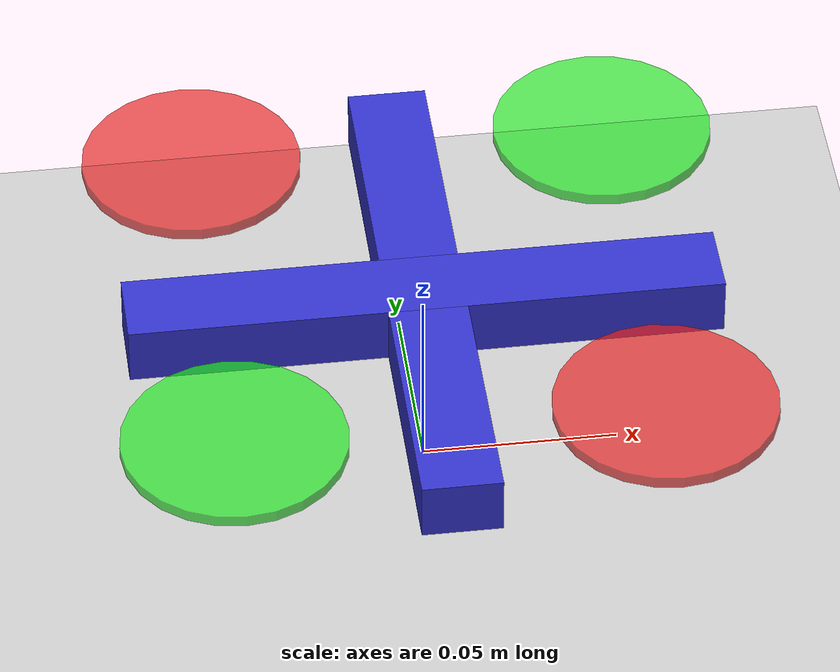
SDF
<?xml version="1.0"?>
<sdf version="1.9">
  <world name="quadrotor_world">

    <!-- Required Gazebo Harmonic system plugins -->
    <plugin filename="gz-sim-physics-system"
            name="gz::sim::systems::Physics"/>
    <plugin filename="gz-sim-sensors-system"
            name="gz::sim::systems::Sensors">
      <render_engine>ogre2</render_engine>
    </plugin>
    <plugin filename="gz-sim-scene-broadcaster-system"
            name="gz::sim::systems::SceneBroadcaster"/>
    <plugin filename="gz-sim-user-commands-system"
            name="gz::sim::systems::UserCommands"/>
    <plugin filename="gz-sim-imu-system"
            name="gz::sim::systems::Imu"/>

    <!-- Lighting -->
    <light name="sun" type="directional">
      <cast_shadows>true</cast_shadows>
      <pose>0 0 10 0 0 0</pose>
      <diffuse>0.8 0.8 0.8 1</diffuse>
      <specular>0.2 0.2 0.2 1</specular>
      <direction>-0.5 0.1 -0.9</direction>
    </light>

    <!-- Ground plane -->
    <model name="ground_plane">
      <static>true</static>
      <link name="link">
        <collision name="collision">
          <geometry>
            <plane><normal>0 0 1</normal><size>100 100</size></plane>
          </geometry>
          <surface>
            <friction><ode><mu>100</mu><mu2>50</mu2></ode></friction>
          </surface>
        </collision>
        <visual name="visual">
          <geometry>
            <plane><normal>0 0 1</normal><size>100 100</size></plane>
          </geometry>
          <material>
            <ambient>0.8 0.8 0.8 1</ambient>
            <diffuse>0.8 0.8 0.8 1</diffuse>
          </material>
        </visual>
      </link>
    </model>

    <!-- Quadrotor model -->
    <include>
      <uri>model://quadrotor</uri>
      <name>quadrotor</name>
      <pose>0 0 0.05 0 0 0</pose>
    </include>

    <!-- Physics settings -->
    <physics name="1ms" type="ignored">
      <max_step_size>0.001</max_step_size>
      <real_time_factor>1</real_time_factor>
    </physics>

  </world>
</sdf>

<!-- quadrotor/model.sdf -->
<sdf version="1.9">
  <model name="quadrotor">
    <pose>0 0 0.05 0 0 0</pose>

    <!-- ─── Main body ─── -->
    <link name="base_link">
      <inertial>
        <mass>0.045</mass>
        <pose>0 0 0 0 0 0</pose>
        <inertia>
          <ixx>7.921e-5</ixx> <ixy>0</ixy> <ixz>0</ixz>
          <iyy>13.604e-5</iyy> <iyz>0</iyz>
          <izz>7.317e-5</izz>
        </inertia>
      </inertial>
      <visual name="body_visual">
        <geometry>
          <box><size>0.15 0.02 0.015</size></box>
        </geometry>
        <material><diffuse>0.2 0.2 0.8 1</diffuse></material>
      </visual>
      <visual name="body_visual2">
        <pose>0 0 0 0 0 1.5708</pose>
        <geometry>
          <box><size>0.15 0.02 0.015</size></box>
        </geometry>
        <material><diffuse>0.2 0.2 0.8 1</diffuse></material>
      </visual>
      <collision name="body_collision">
        <geometry>
          <box><size>0.15 0.15 0.03</size></box>
        </geometry>
      </collision>
      <sensor name="imu" type="imu">
        <always_on>true</always_on>
        <update_rate>200</update_rate>
        <topic>/imu/data</topic>
        <imu>
          <angular_velocity><x><noise type="gaussian"><mean>0</mean><stddev>0.001</stddev></noise></x></angular_velocity>
          <linear_acceleration><x><noise type="gaussian"><mean>0</mean><stddev>0.01</stddev></noise></x></linear_acceleration>
        </imu>
      </sensor>
    </link>

    <!-- ─── Rotor links (X-configuration) ─── -->
    <!-- Motor 1: front-left  CW   (-x, +y) -->
    <link name="rotor_1">
      <pose>-0.0530 0.0530 0.008 0 0 0</pose>
      <inertial>
        <mass>0.001</mass>
        <inertia><ixx>9.75e-7</ixx><ixy>0</ixy><ixz>0</ixz><iyy>1.66e-8</iyy><iyz>0</iyz><izz>9.75e-7</izz></inertia>
      </inertial>
      <visual name="vis">
        <geometry><cylinder><radius>0.028</radius><length>0.003</length></cylinder></geometry>
        <material><diffuse>0.9 0.1 0.1 0.7</diffuse></material>
      </visual>
      <collision name="col">
        <geometry><cylinder><radius>0.028</radius><length>0.003</length></cylinder></geometry>
      </collision>
    </link>
    <joint name="rotor_1_joint" type="revolute">
      <parent>base_link</parent>
      <child>rotor_1</child>
      <axis><xyz>0 0 1</xyz><limit><lower>-1e16</lower><upper>1e16</upper></limit></axis>
    </joint>

    <!-- Motor 2: front-right CCW  (+x, +y) -->
    <link name="rotor_2">
      <pose>0.0530 0.0530 0.008 0 0 0</pose>
      <inertial>
        <mass>0.001</mass>
        <inertia><ixx>9.75e-7</ixx><ixy>0</ixy><ixz>0</ixz><iyy>1.66e-8</iyy><iyz>0</iyz><izz>9.75e-7</izz></inertia>
      </inertial>
      <visual name="vis">
        <geometry><cylinder><radius>0.028</radius><length>0.003</length></cylinder></geometry>
        <material><diffuse>0.1 0.9 0.1 0.7</diffuse></material>
      </visual>
      <collision name="col">
        <geometry><cylinder><radius>0.028</radius><length>0.003</length></cylinder></geometry>
      </collision>
    </link>
    <joint name="rotor_2_joint" type="revolute">
      <parent>base_link</parent>
      <child>rotor_2</child>
      <axis><xyz>0 0 1</xyz><limit><lower>-1e16</lower><upper>1e16</upper></limit></axis>
    </joint>

    <!-- Motor 3: rear-right  CW   (+x, -y) -->
    <link name="rotor_3">
      <pose>0.0530 -0.0530 0.008 0 0 0</pose>
      <inertial>
        <mass>0.001</mass>
        <inertia><ixx>9.75e-7</ixx><ixy>0</ixy><ixz>0</ixz><iyy>1.66e-8</iyy><iyz>0</iyz><izz>9.75e-7</izz></inertia>
      </inertial>
      <visual name="vis">
        <geometry><cylinder><radius>0.028</radius><length>0.003</length></cylinder></geometry>
        <material><diffuse>0.9 0.1 0.1 0.7</diffuse></material>
      </visual>
      <collision name="col">
        <geometry><cylinder><radius>0.028</radius><length>0.003</length></cylinder></geometry>
      </collision>
    </link>
    <joint name="rotor_3_joint" type="revolute">
      <parent>base_link</parent>
      <child>rotor_3</child>
      <axis><xyz>0 0 1</xyz><limit><lower>-1e16</lower><upper>1e16</upper></limit></axis>
    </joint>

    <!-- Motor 4: rear-left   CCW  (-x, -y) -->
    <link name="rotor_4">
      <pose>-0.0530 -0.0530 0.008 0 0 0</pose>
      <inertial>
        <mass>0.001</mass>
        <inertia><ixx>9.75e-7</ixx><ixy>0</ixy><ixz>0</ixz><iyy>1.66e-8</iyy><iyz>0</iyz><izz>9.75e-7</izz></inertia>
      </inertial>
      <visual name="vis">
        <geometry><cylinder><radius>0.028</radius><length>0.003</length></cylinder></geometry>
        <material><diffuse>0.1 0.9 0.1 0.7</diffuse></material>
      </visual>
      <collision name="col">
        <geometry><cylinder><radius>0.028</radius><length>0.003</length></cylinder></geometry>
      </collision>
    </link>
    <joint name="rotor_4_joint" type="revolute">
      <parent>base_link</parent>
      <child>rotor_4</child>
      <axis><xyz>0 0 1</xyz><limit><lower>-1e16</lower><upper>1e16</upper></limit></axis>
    </joint>

    <!-- ─── Multicopter motor model plugins ─── -->
    <!-- Motor 1 CW -->
    <plugin filename="gz-sim-multicopter-motor-model-system"
            name="gz::sim::systems::MulticopterMotorModel">
      <jointName>rotor_1_joint</jointName>
      <linkName>rotor_1</linkName>
      <turningDirection>cw</turningDirection>
      <timeConstantUp>0.07</timeConstantUp>
      <timeConstantDown>0.07</timeConstantDown>
      <maxRotVelocity>2640</maxRotVelocity>
      <motorConstant>2.64e-8</motorConstant>
      <momentConstant>5.4e-9</momentConstant>
      <commandSubTopic>/motor_speed</commandSubTopic>
      <motorNumber>0</motorNumber>
      <motorSpeedPubTopic>/motor_speed/motor_0</motorSpeedPubTopic>
    </plugin>

    <!-- Motor 2 CCW -->
    <plugin filename="gz-sim-multicopter-motor-model-system"
            name="gz::sim::systems::MulticopterMotorModel">
      <jointName>rotor_2_joint</jointName>
      <linkName>rotor_2</linkName>
      <turningDirection>ccw</turningDirection>
      <timeConstantUp>0.07</timeConstantUp>
      <timeConstantDown>0.07</timeConstantDown>
      <maxRotVelocity>2640</maxRotVelocity>
      <motorConstant>2.64e-8</motorConstant>
      <momentConstant>5.4e-9</momentConstant>
      <commandSubTopic>/motor_speed</commandSubTopic>
      <motorNumber>1</motorNumber>
      <motorSpeedPubTopic>/motor_speed/motor_1</motorSpeedPubTopic>
    </plugin>

    <!-- Motor 3 CW -->
    <plugin filename="gz-sim-multicopter-motor-model-system"
            name="gz::sim::systems::MulticopterMotorModel">
      <jointName>rotor_3_joint</jointName>
      <linkName>rotor_3</linkName>
      <turningDirection>cw</turningDirection>
      <timeConstantUp>0.07</timeConstantUp>
      <timeConstantDown>0.07</timeConstantDown>
      <maxRotVelocity>2640</maxRotVelocity>
      <motorConstant>2.64e-8</motorConstant>
      <momentConstant>5.4e-9</momentConstant>
      <commandSubTopic>/motor_speed</commandSubTopic>
      <motorNumber>2</motorNumber>
      <motorSpeedPubTopic>/motor_speed/motor_2</motorSpeedPubTopic>
    </plugin>

    <!-- Motor 4 CCW -->
    <plugin filename="gz-sim-multicopter-motor-model-system"
            name="gz::sim::systems::MulticopterMotorModel">
      <jointName>rotor_4_joint</jointName>
      <linkName>rotor_4</linkName>
      <turningDirection>ccw</turningDirection>
      <timeConstantUp>0.07</timeConstantUp>
      <timeConstantDown>0.07</timeConstantDown>
      <maxRotVelocity>2640</maxRotVelocity>
      <motorConstant>2.64e-8</motorConstant>
      <momentConstant>5.4e-9</momentConstant>
      <commandSubTopic>/motor_speed</commandSubTopic>
      <motorNumber>3</motorNumber>
      <motorSpeedPubTopic>/motor_speed/motor_3</motorSpeedPubTopic>
    </plugin>

    <!-- Odometry publisher -->
    <plugin filename="gz-sim-odometry-publisher-system"
            name="gz::sim::systems::OdometryPublisher">
      <odomTopic>/odom</odomTopic>
      <odomFrame>world</odomFrame>
      <robotBaseFrame>base_link</robotBaseFrame>
      <updateFrequency>50</updateFrequency>
      <gaussianNoise>0.001</gaussianNoise>
    </plugin>

  </model>
</sdf>
